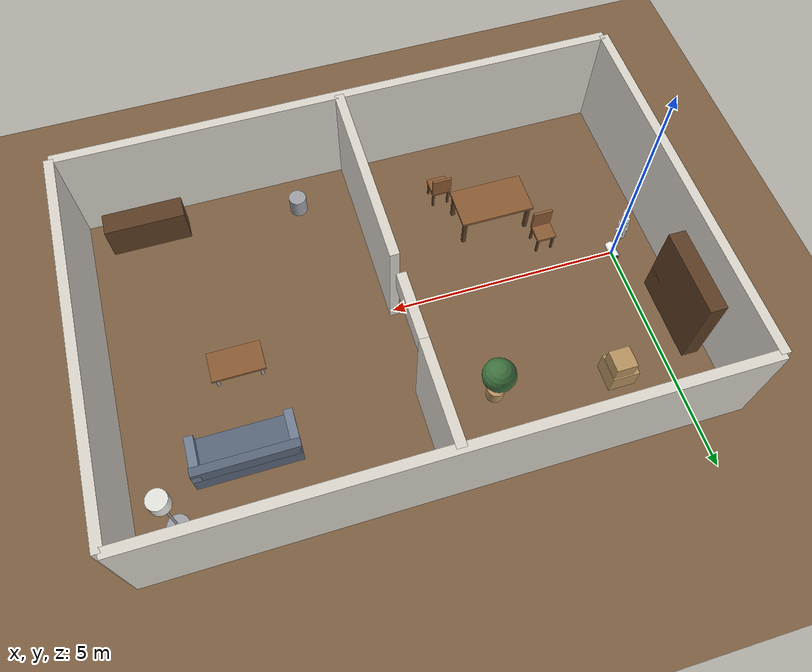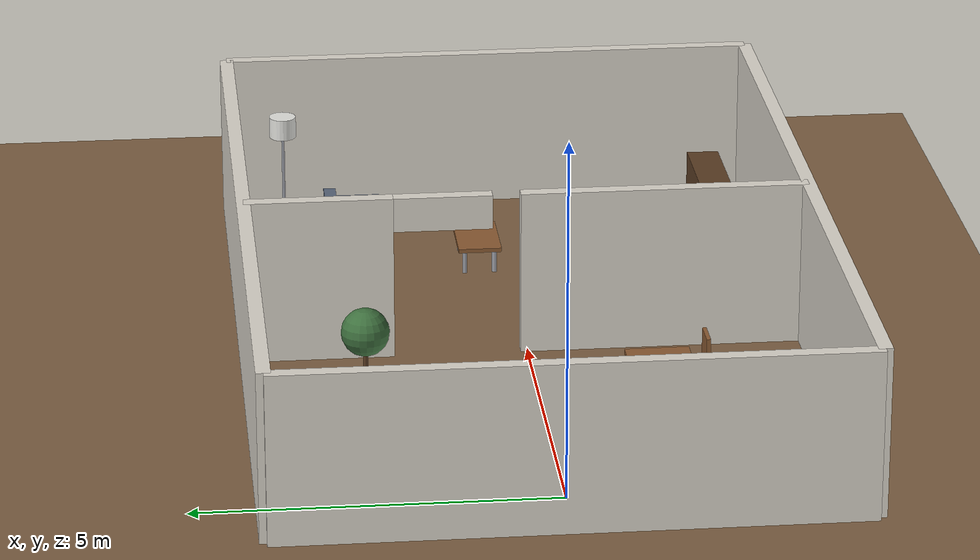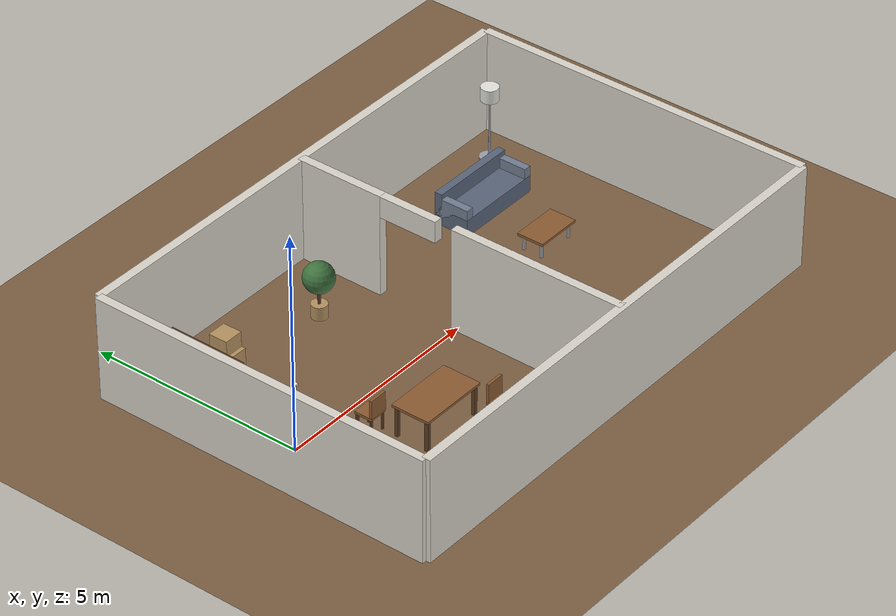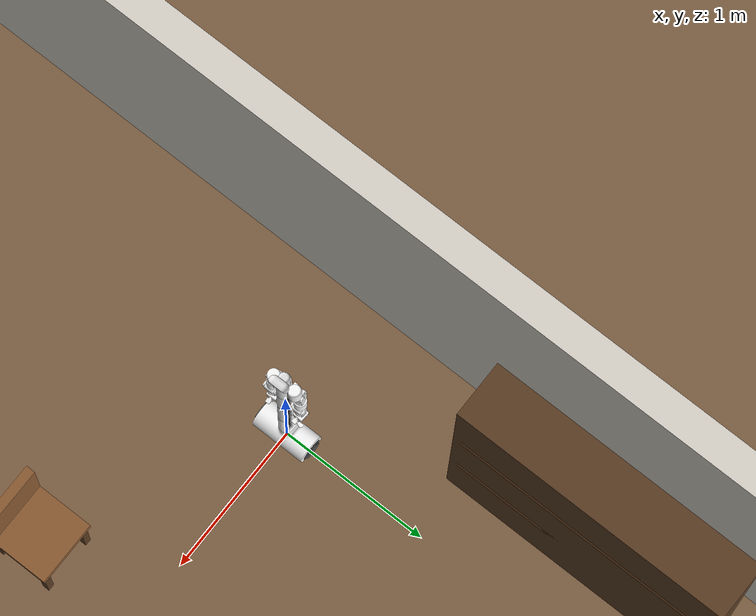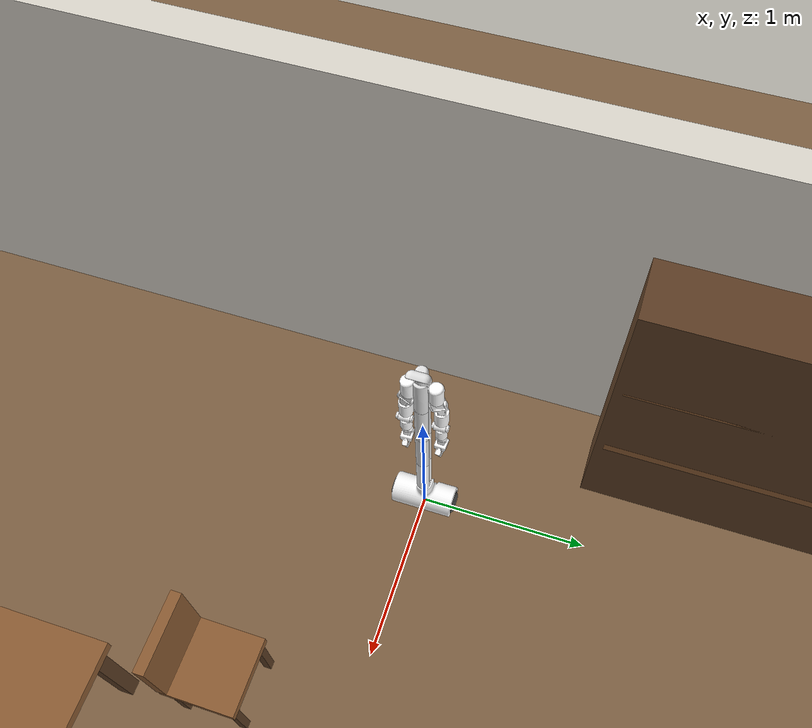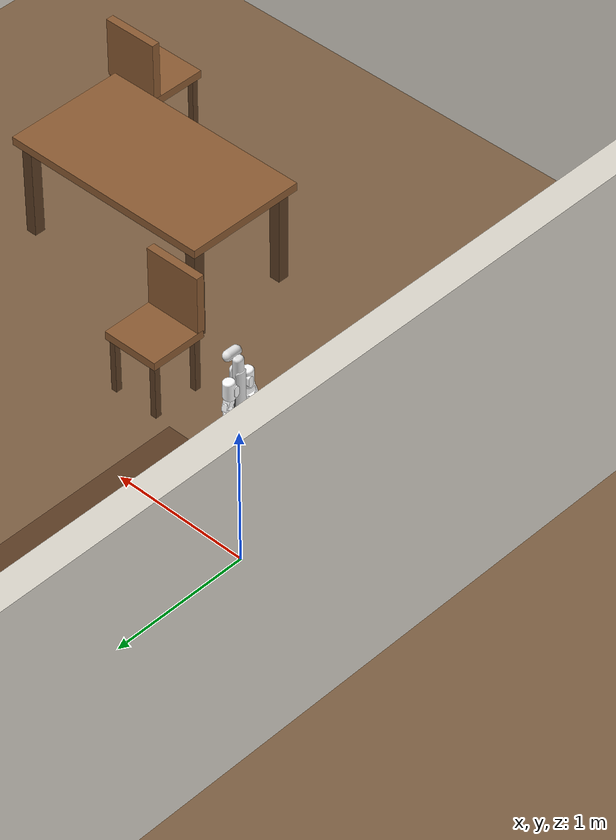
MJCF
<mujoco model="apartment">
  <include file="../main_mujoco/chopped_dynamic.xml"/>
  <compiler meshdir="../main_mujoco/meshes/"/>

  <statistic center="5 0 1.0" extent="7.0"/>

  <visual>
    <headlight diffuse="0.5 0.5 0.5" ambient="0.4 0.4 0.4" specular="0.05 0.05 0.05"/>
    <rgba haze="0.2 0.2 0.22 1"/>
    <global azimuth="150" elevation="-25" offwidth="1280" offheight="960"/>
    <map znear="0.01" zfar="50"/>
    <quality shadowsize="4096"/>
  </visual>

  <asset>
    <texture type="skybox" builtin="gradient" rgb1="0.55 0.58 0.62" rgb2="0.2 0.22 0.25" width="512" height="3072"/>
    <texture type="2d" name="floorwood" builtin="checker" mark="edge"
             rgb1="0.52 0.40 0.28" rgb2="0.46 0.35 0.24" markrgb="0.35 0.26 0.18"
             width="300" height="300"/>
    <material name="floorwood" texture="floorwood" texuniform="true" texrepeat="14 10" reflectance="0.05"/>
    <material name="wall"    rgba="0.86 0.84 0.80 1"/>
    <material name="wood"    rgba="0.55 0.36 0.20 1"/>
    <material name="darkwood" rgba="0.36 0.24 0.14 1"/>
    <material name="fabric"  rgba="0.35 0.40 0.48 1"/>
    <material name="cushion" rgba="0.45 0.50 0.58 1"/>
    <material name="metal"   rgba="0.62 0.63 0.66 1"/>
    <material name="carton"  rgba="0.72 0.58 0.38 1"/>
    <material name="plant"   rgba="0.25 0.45 0.25 1"/>
    <material name="white"   rgba="0.90 0.90 0.88 1"/>
  </asset>

  <worldbody>
    <light pos="2 0 2.6" dir="0 0 -1" directional="false" diffuse="0.45 0.45 0.42"/>
    <light pos="8 0 2.6" dir="0 0 -1" directional="false" diffuse="0.45 0.45 0.42"/>
    <light pos="5 0 6" dir="0 0 -1" directional="true" diffuse="0.35 0.35 0.35"/>
    <geom name="floor" size="0 0 0.05" type="plane" material="floorwood"
          friction="1.6 0.01 0.001" condim="4"/>

    <!-- ============ shell ============ -->
    <body name="wall_w" pos="-1.0 0 1.2"><geom type="box" size="0.1 4.0 1.2" material="wall"/></body>
    <body name="wall_e" pos="11.0 0 1.2"><geom type="box" size="0.1 4.0 1.2" material="wall"/></body>
    <body name="wall_s" pos="5.0 -4.0 1.2"><geom type="box" size="6.0 0.1 1.2" material="wall"/></body>
    <body name="wall_n" pos="5.0  4.0 1.2"><geom type="box" size="6.0 0.1 1.2" material="wall"/></body>

    <!-- divider with a single doorway at y 0.5 .. 1.9 -->
    <body name="divider_s" pos="5.0 -1.95 1.2"><geom type="box" size="0.1 2.05 1.2" material="wall"/></body>
    <body name="divider_n" pos="5.0  2.95 1.2"><geom type="box" size="0.1 1.05 1.2" material="wall"/></body>
    <body name="door_lintel" pos="5.0 1.2 2.15"><geom type="box" size="0.1 0.7 0.25" material="wall"/></body>

    <!-- ============ room A: dining ============ -->
    <body name="table" pos="2.3 -1.6 0">
      <geom name="table_top" type="box" pos="0 0 0.73" size="0.80 0.45 0.03" material="wood"/>
      <geom type="box" pos=" 0.72 -0.37 0.36" size="0.04 0.04 0.36" material="darkwood"/>
      <geom type="box" pos="-0.72 -0.37 0.36" size="0.04 0.04 0.36" material="darkwood"/>
      <geom type="box" pos=" 0.72  0.37 0.36" size="0.04 0.04 0.36" material="darkwood"/>
      <geom type="box" pos="-0.72  0.37 0.36" size="0.04 0.04 0.36" material="darkwood"/>
    </body>

    <body name="chair_a" pos="1.4 -0.7 0">
      <geom type="box" pos="0 0 0.44" size="0.21 0.21 0.03" material="wood"/>
      <geom type="box" pos="0 -0.19 0.68" size="0.21 0.03 0.22" material="wood"/>
      <geom type="box" pos=" 0.17  0.17 0.22" size="0.022 0.022 0.22" material="darkwood"/>
      <geom type="box" pos="-0.17  0.17 0.22" size="0.022 0.022 0.22" material="darkwood"/>
      <geom type="box" pos=" 0.17 -0.17 0.22" size="0.022 0.022 0.22" material="darkwood"/>
      <geom type="box" pos="-0.17 -0.17 0.22" size="0.022 0.022 0.22" material="darkwood"/>
    </body>

    <body name="chair_b" pos="3.2 -2.5 0">
      <geom type="box" pos="0 0 0.44" size="0.21 0.21 0.03" material="wood"/>
      <geom type="box" pos="0 0.19 0.68" size="0.21 0.03 0.22" material="wood"/>
      <geom type="box" pos=" 0.17  0.17 0.22" size="0.022 0.022 0.22" material="darkwood"/>
      <geom type="box" pos="-0.17  0.17 0.22" size="0.022 0.022 0.22" material="darkwood"/>
      <geom type="box" pos=" 0.17 -0.17 0.22" size="0.022 0.022 0.22" material="darkwood"/>
      <geom type="box" pos="-0.17 -0.17 0.22" size="0.022 0.022 0.22" material="darkwood"/>
    </body>

    <!-- bookshelf against the west wall -->
    <body name="bookshelf" pos="-0.55 1.8 0">
      <geom type="box" pos="0 0 0.95" size="0.18 0.9 0.95" material="darkwood"/>
      <geom type="box" pos="0.02 0 1.25" size="0.16 0.85 0.03" material="wood"/>
      <geom type="box" pos="0.02 0 0.62" size="0.16 0.85 0.03" material="wood"/>
    </body>

    <!-- stacked cartons -->
    <body name="cartons" pos="1.1 2.7 0">
      <geom type="box" pos="0 0 0.25" size="0.28 0.28 0.25" material="carton"/>
      <geom type="box" pos="0.05 0.03 0.68" size="0.22 0.22 0.18" material="carton"/>
    </body>

    <!-- a potted plant: thin trunk, wide head, a classic depth-camera nuisance -->
    <body name="plant" pos="3.6 2.4 0">
      <geom type="cylinder" pos="0 0 0.16" size="0.18 0.16" material="carton"/>
      <geom type="cylinder" pos="0 0 0.55" size="0.035 0.28" material="darkwood"/>
      <geom type="sphere"   pos="0 0 0.95" size="0.34" material="plant"/>
    </body>

    <!-- ============ room B: living ============ -->
    <body name="sofa" pos="8.6 2.2 0">
      <geom type="box" pos="0 0 0.20" size="1.05 0.42 0.20" material="fabric"/>
      <geom type="box" pos="0 0.33 0.48" size="1.05 0.09 0.28" material="fabric"/>
      <geom type="box" pos=" 0.96 0 0.42" size="0.09 0.42 0.22" material="cushion"/>
      <geom type="box" pos="-0.96 0 0.42" size="0.09 0.42 0.22" material="cushion"/>
    </body>

    <body name="coffee_table" pos="8.4 0.4 0">
      <geom type="box" pos="0 0 0.38" size="0.55 0.32 0.03" material="wood"/>
      <geom type="cylinder" pos=" 0.45 0.22 0.19" size="0.035 0.19" material="metal"/>
      <geom type="cylinder" pos="-0.45 0.22 0.19" size="0.035 0.19" material="metal"/>
      <geom type="cylinder" pos=" 0.45 -0.22 0.19" size="0.035 0.19" material="metal"/>
      <geom type="cylinder" pos="-0.45 -0.22 0.19" size="0.035 0.19" material="metal"/>
    </body>

    <!-- floor lamp: very thin pole, the hardest thing here to see -->
    <body name="lamp" pos="10.1 3.2 0">
      <geom type="cylinder" pos="0 0 0.02" size="0.22 0.02" material="metal"/>
      <geom type="cylinder" pos="0 0 0.75" size="0.022 0.75" material="metal"/>
      <geom type="cylinder" pos="0 0 1.62" size="0.20 0.16" material="white"/>
    </body>

    <body name="bin" pos="6.3 -3.1 0">
      <geom type="cylinder" pos="0 0 0.22" size="0.19 0.22" material="metal"/>
    </body>

    <body name="sideboard" pos="9.6 -3.3 0">
      <geom type="box" pos="0 0 0.42" size="0.85 0.24 0.42" material="darkwood"/>
      <geom type="box" pos="0 -0.26 0.58" size="0.30 0.02 0.16" material="wood"/>
    </body>
  </worldbody>
</mujoco>

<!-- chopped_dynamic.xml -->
<mujoco model="bracketbot_chopped_v2">
  <compiler angle="radian" meshdir="meshes/" autolimits="true" />
  <option timestep="0.002" integrator="implicitfast" cone="elliptic" impratio="10" />
  <asset>
    <mesh name="Base_Extrusion__Base_Extrusion" content_type="model/stl" file="Base_Extrusion__Base_Extrusion.stl" />
    <mesh name="Base_Extrusion__Base_Extrusion__Base_Extrusion__Base_Extrusion" content_type="model/stl" file="Base_Extrusion__Base_Extrusion__Base_Extrusion__Base_Extrusion.stl" />
    <mesh name="Base_Plate__Base_Plate" content_type="model/stl" file="Base_Plate__Base_Plate.stl" />
    <mesh name="Base_Print__Base_Print" content_type="model/stl" file="Base_Print__Base_Print.stl" />
    <mesh name="Battery_Terminal__Battery_Terminal" content_type="model/stl" file="Battery_Terminal__Battery_Terminal.stl" />
    <mesh name="Bottom_Cover_Back__Bottom_Cover_Back__Bottom_Cover_Back__Bottom_Cover_Back" content_type="model/stl" file="Bottom_Cover_Back__Bottom_Cover_Back__Bottom_Cover_Back__Bottom_Cover_Back.stl" />
    <mesh name="Bottom_Cover_Front__Bottom_Cover_Front__Bottom_Cover_Front__Bottom_Cover_Front" content_type="model/stl" file="Bottom_Cover_Front__Bottom_Cover_Front__Bottom_Cover_Front__Bottom_Cover_Front.stl" />
    <mesh name="Camera_Cover__Camera_Cover__Camera_Cover__Camera_Cover" content_type="model/stl" file="Camera_Cover__Camera_Cover__Camera_Cover__Camera_Cover.stl" />
    <mesh name="Cover_MiddleBot_Back__Cover_MiddleBot_Back__Cover_MiddleBot_Back__Cover_MiddleBot_Back" content_type="model/stl" file="Cover_MiddleBot_Back__Cover_MiddleBot_Back__Cover_MiddleBot_Back__Cover_MiddleBot_Back.stl" />
    <mesh name="Cover_MiddleBot_Front__Cover_MiddleBot_Front__Cover_MiddleBot_Front__Cover_MiddleBot_Front" content_type="model/stl" file="Cover_MiddleBot_Front__Cover_MiddleBot_Front__Cover_MiddleBot_Front__Cover_MiddleBot_Front.stl" />
    <mesh name="Cover_MiddleTop_Back__Cover_MiddleTop_Back__Cover_MiddleTop_Back__Cover_MiddleTop_Back" content_type="model/stl" file="Cover_MiddleTop_Back__Cover_MiddleTop_Back__Cover_MiddleTop_Back__Cover_MiddleTop_Back.stl" />
    <mesh name="Cover_MiddleTop_Front__Cover_MiddleTop_Front__Cover_MiddleTop_Front__Cover_MiddleTop_Front" content_type="model/stl" file="Cover_MiddleTop_Front__Cover_MiddleTop_Front__Cover_MiddleTop_Front__Cover_MiddleTop_Front.stl" />
    <mesh name="Cover_Top_Front__Cover_Top_Front__Cover_Top_Front__Cover_Top_Front" content_type="model/stl" file="Cover_Top_Front__Cover_Top_Front__Cover_Top_Front__Cover_Top_Front.stl" />
    <mesh name="Head__Head__Head__Head" content_type="model/stl" file="Head__Head__Head__Head.stl" />
    <mesh name="Head_Cover__Head_Cover__Head_Cover__Head_Cover" content_type="model/stl" file="Head_Cover__Head_Cover__Head_Cover__Head_Cover.stl" />
    <mesh name="Left_wheel_cap__Left_wheel_cap" content_type="model/stl" file="Left_wheel_cap__Left_wheel_cap.stl" />
    <mesh name="Left_Wheel_Tire__Left_Wheel_Tire" content_type="model/stl" file="Left_Wheel_Tire__Left_Wheel_Tire.stl" />
    <mesh name="Main_Extrusion__Main_Extrusion__Main_Extrusion__Main_Extrusion" content_type="model/stl" file="Main_Extrusion__Main_Extrusion__Main_Extrusion__Main_Extrusion.stl" />
    <mesh name="Mirror30__Mirror30" content_type="model/stl" file="Mirror30__Mirror30.stl" />
    <mesh name="Right_Wheel_Cap__Right_Wheel_Cap" content_type="model/stl" file="Right_Wheel_Cap__Right_Wheel_Cap.stl" />
    <mesh name="Right_Wheel_Tire__Right_Wheel_Tire" content_type="model/stl" file="Right_Wheel_Tire__Right_Wheel_Tire.stl" />
    <mesh name="Top_Cover_back__Top_Cover_back__Top_Cover_back__Top_Cover_back" content_type="model/stl" file="Top_Cover_back__Top_Cover_back__Top_Cover_back__Top_Cover_back.stl" />
    <mesh name="Bicep__Bicep" content_type="model/stl" file="Bicep__Bicep.stl" />
    <mesh name="Bicep_Cover__Bicep_Cover" content_type="model/stl" file="Bicep_Cover__Bicep_Cover.stl" />
    <mesh name="Forearm__Forearm" content_type="model/stl" file="Forearm__Forearm.stl" />
    <mesh name="Forearm_Cover__Forearm_Cover" content_type="model/stl" file="Forearm_Cover__Forearm_Cover.stl" />
    <mesh name="Forearm_Rotation__Forearm_Rotation" content_type="model/stl" file="Forearm_Rotation__Forearm_Rotation.stl" />
    <mesh name="Hand__Hand" content_type="model/stl" file="Hand__Hand.stl" />
    <mesh name="Hand_Motor_Mount__Hand_Motor_Mount" content_type="model/stl" file="Hand_Motor_Mount__Hand_Motor_Mount.stl" />
    <mesh name="Left_Finger__Left_Finger" content_type="model/stl" file="Left_Finger__Left_Finger.stl" />
    <mesh name="Right_Finger__Right_Finger" content_type="model/stl" file="Right_Finger__Right_Finger.stl" />
    <mesh name="Shoulder__Shoulder" content_type="model/stl" file="Shoulder__Shoulder.stl" />
    <mesh name="Shoulder_Cover__Shoulder_Cover" content_type="model/stl" file="Shoulder_Cover__Shoulder_Cover.stl" />
    <mesh name="Shoulder_Knuckle__Shoulder_Knuckle" content_type="model/stl" file="Shoulder_Knuckle__Shoulder_Knuckle.stl" />
    <mesh name="Wrist_Cam__Wrist_Cam" content_type="model/stl" file="Wrist_Cam__Wrist_Cam.stl" />
    <mesh name="Wrist_Knuckle__Wrist_Knuckle" content_type="model/stl" file="Wrist_Knuckle__Wrist_Knuckle.stl" />
    <mesh name="Shoulder__Shoulder_Mirrored" content_type="model/stl" file="Shoulder__Shoulder_Mirrored.stl" />
    <mesh name="Shoulder_Knuckle__Shoulder_Knuckle_Mirrored" content_type="model/stl" file="Shoulder_Knuckle__Shoulder_Knuckle_Mirrored.stl" />
    <mesh name="Bicep__Bicep_Mirrored" content_type="model/stl" file="Bicep__Bicep_Mirrored.stl" />
    <mesh name="Forearm__Forearm_Mirrored" content_type="model/stl" file="Forearm__Forearm_Mirrored.stl" />
    <mesh name="Forearm_Rotation__Forearm_Rotation_Mirrored" content_type="model/stl" file="Forearm_Rotation__Forearm_Rotation_Mirrored.stl" />
    <mesh name="Wrist_Knuckle__Wrist_Knuckle_Mirrored" content_type="model/stl" file="Wrist_Knuckle__Wrist_Knuckle_Mirrored.stl" />
    <mesh name="Hand__Hand_Mirrored" content_type="model/stl" file="Hand__Hand_Mirrored.stl" />
    <mesh name="Wrist_Cam__Wrist_Cam_Mirrored" content_type="model/stl" file="Wrist_Cam__Wrist_Cam_Mirrored.stl" />
    <mesh name="Hand_Motor_Mount__Hand_Motor_Mount_Mirrored" content_type="model/stl" file="Hand_Motor_Mount__Hand_Motor_Mount_Mirrored.stl" />
    <mesh name="Right_Finger__Right_Finger_Mirrored" content_type="model/stl" file="Right_Finger__Right_Finger_Mirrored.stl" />
    <mesh name="Left_Finger__Left_Finger_Mirrored" content_type="model/stl" file="Left_Finger__Left_Finger_Mirrored.stl" />
    <mesh name="Forearm_Cover__Forearm_Cover_Mirrored" content_type="model/stl" file="Forearm_Cover__Forearm_Cover_Mirrored.stl" />
    <mesh name="Bicep_Cover__Bicep_Cover_Mirrored" content_type="model/stl" file="Bicep_Cover__Bicep_Cover_Mirrored.stl" />
    <mesh name="Shoulder_Cover__Shoulder_Cover_Mirrored" content_type="model/stl" file="Shoulder_Cover__Shoulder_Cover_Mirrored.stl" />
  </asset>
  <default>
    <default class="visual">
      <geom contype="0" conaffinity="0" group="2" type="mesh" density="0" />
    </default>
    <default class="collision">
      <geom contype="1" conaffinity="1" group="3" density="0" rgba="0.9 0.4 0.2 0.35" friction="1 0.005 0.0001" />
    </default>
    <default class="wheel">
      <geom contype="1" conaffinity="1" group="3" density="0" rgba="0.1 0.1 0.1 0.6" friction="1.6 0.01 0.001" condim="4" solref="0.005 1" priority="2" />
    </default>
    <default class="pad">
      <geom contype="1" conaffinity="1" group="3" density="0" rgba="0.2 0.8 0.4 0.6" friction="2.5 0.05 0.005" condim="4" priority="3" solref="0.004 1" solimp="0.95 0.99 0.001" />
    </default>
    <default class="arm">
      <joint damping="4.0" armature="0.05" frictionloss="0.1" />
      <position kp="800" kv="60" forcerange="-150 150" />
    </default>
    <default class="mast">
      <joint damping="60" armature="0.5" frictionloss="1.0" />
      <position kp="6000" kv="400" forcerange="-400 400" />
    </default>
    <default class="gripper">
      <joint damping="0.4" armature="0.01" frictionloss="0.02" />
      <position kp="35" kv="1.5" forcerange="-12 12" />
    </default>
  </default>
  <worldbody>
    <body name="chassis" pos="0 0 0">
      <freejoint name="root" />
      <inertial pos="0.018227 3.07762e-06 0.144928" quat="6.24856e-05 0.717422 -6.23742e-05 -0.696638" mass="3.38" diaginertia="0.0545356 0.0861119 0.11238" />
      <site name="imu" pos="0.018227 3.07762e-06 0.144928" size="0.01" rgba="0 1 0 0.5" />
      <geom class="visual" mesh="Base_Plate__Base_Plate" pos="0.0113398 6.4516e-07 0.0776294" quat="0.707106 -0.707108 -1.79246e-05 -1.77981e-05" rgba="1 1 1 1" />
      <geom class="visual" mesh="Bottom_Cover_Front__Bottom_Cover_Front__Bottom_Cover_Front__Bottom_Cover_Front" pos="0.0153412 0.00013591 0.0503629" quat="0.707106 -0.707108 -1.79246e-05 -1.77981e-05" rgba="1 1 1 1" />
      <geom class="visual" mesh="Cover_MiddleBot_Front__Cover_MiddleBot_Front__Cover_MiddleBot_Front__Cover_MiddleBot_Front" pos="0.0153412 0.00013591 0.0503629" quat="0.707106 -0.707108 -1.79246e-05 -1.77981e-05" rgba="0.8941 0.8941 0.8941 1" />
      <geom class="visual" mesh="Cover_MiddleTop_Front__Cover_MiddleTop_Front__Cover_MiddleTop_Front__Cover_MiddleTop_Front" pos="0.0153412 0.00013591 0.0503629" quat="0.707106 -0.707108 -1.79246e-05 -1.77981e-05" rgba="0.8941 0.8941 0.8941 1" />
      <geom class="visual" mesh="Cover_Top_Front__Cover_Top_Front__Cover_Top_Front__Cover_Top_Front" pos="0.0153412 0.00013591 0.0503629" quat="0.707106 -0.707108 -1.79246e-05 -1.77981e-05" rgba="0.8941 0.8941 0.8941 1" />
      <geom class="visual" mesh="Top_Cover_back__Top_Cover_back__Top_Cover_back__Top_Cover_back" pos="0.0153412 0.00013591 0.0503629" quat="0.707106 -0.707108 -1.79246e-05 -1.77981e-05" rgba="0.8941 0.8941 0.8941 1" />
      <geom class="visual" mesh="Cover_MiddleTop_Back__Cover_MiddleTop_Back__Cover_MiddleTop_Back__Cover_MiddleTop_Back" pos="0.0153412 0.00013591 0.0503629" quat="0.707106 -0.707108 -1.79246e-05 -1.77981e-05" rgba="0.8941 0.8941 0.8941 1" />
      <geom class="visual" mesh="Cover_MiddleBot_Back__Cover_MiddleBot_Back__Cover_MiddleBot_Back__Cover_MiddleBot_Back" pos="0.0153412 0.00013591 0.0503629" quat="0.707106 -0.707108 -1.79246e-05 -1.77981e-05" rgba="0.8941 0.8941 0.8941 1" />
      <geom class="visual" mesh="Bottom_Cover_Back__Bottom_Cover_Back__Bottom_Cover_Back__Bottom_Cover_Back" pos="0.0153412 0.00013591 0.0503629" quat="0.707106 -0.707108 -1.79246e-05 -1.77981e-05" rgba="1 1 1 1" />
      <geom class="visual" mesh="Main_Extrusion__Main_Extrusion__Main_Extrusion__Main_Extrusion" pos="0.0113398 6.4516e-07 0.0776294" quat="0.707106 -0.707108 -1.79246e-05 -1.77981e-05" rgba="0.302 0.302 0.302 1" />
      <geom class="visual" mesh="Base_Extrusion__Base_Extrusion__Base_Extrusion__Base_Extrusion" pos="0.0113398 6.4516e-07 0.0776294" quat="0.707106 -0.707108 -1.79246e-05 -1.77981e-05" rgba="0.8 0.8 0.8 1" />
      <geom class="visual" mesh="Base_Extrusion__Base_Extrusion" pos="0.0113397 6.47368e-07 0.0776294" quat="0.707106 -0.707108 -1.79246e-05 -1.77981e-05" rgba="0.7922 0.8196 0.9333 1" />
      <geom class="visual" mesh="Base_Print__Base_Print" pos="0.0113398 6.4516e-07 0.0776294" quat="0.707106 -0.707108 -1.79246e-05 -1.77981e-05" rgba="1 1 1 1" />
      <geom class="visual" mesh="Battery_Terminal__Battery_Terminal" pos="0.0113398 6.4516e-07 0.0776294" quat="0.707106 -0.707108 -1.79246e-05 -1.77981e-05" rgba="1 0.7569 0.0549 1" />
      <geom class="visual" mesh="Mirror30__Mirror30" pos="0.0113398 6.4516e-07 0.0776294" quat="0.707106 -0.707108 -1.79246e-05 -1.77981e-05" rgba="1 1 1 1" />
      <geom class="visual" mesh="Head__Head__Head__Head" pos="0.0113398 6.4516e-07 0.0776294" quat="0.707106 -0.707108 -1.79246e-05 -1.77981e-05" rgba="0.8941 0.8941 0.8941 1" />
      <geom class="visual" mesh="Camera_Cover__Camera_Cover__Camera_Cover__Camera_Cover" pos="0.0113428 6.4516e-07 0.0776293" quat="0.707106 -0.707108 -1.8625e-05 -1.84985e-05" rgba="0.251 0.251 0.251 1" />
      <geom class="visual" mesh="Head_Cover__Head_Cover__Head_Cover__Head_Cover" pos="0.0113398 6.4516e-07 0.0776294" quat="0.707106 -0.707108 -1.79246e-05 -1.77981e-05" rgba="0.8941 0.8941 0.8941 1" />
      <geom class="collision" name="col_base_hull" type="box" pos="3.94536e-05 7.39092e-07 0.157186" size="0.0935995 0.18575 0.129078" />
      <geom class="collision" name="col_mast" type="box" pos="8.99487e-07 2.8209e-06 0.847629" size="0.0200308 0.0200017 0.610001" />
      <geom class="collision" name="col_head" type="box" pos="0.0202672 1.33499e-05 1.5235" size="0.054031 0.0654754 0.0878748" />
      <camera name="head_rgb" mode="fixed" fovy="42" pos="0.0792982 0 1.5435" xyaxes="0 -1 0 0 0 1" />
      <camera name="head_depth" mode="fixed" fovy="58" pos="0.0792982 0 1.5435" xyaxes="0 -1 0 0.374607 0 0.927184" />
      <camera name="head_stereo_left" mode="fixed" fovy="55" pos="0.0792982 0.03 1.5435" xyaxes="0 -1 0 0 0 1" />
      <camera name="head_stereo_right" mode="fixed" fovy="55" pos="0.0792982 -0.03 1.5435" xyaxes="0 -1 0 0 0 1" />
      <body name="right_wheel" pos="0 -0.1611 0.0846">
        <joint name="right_wheel_joint" type="hinge" axis="0 1 0" damping="0.02" armature="0.005" frictionloss="0.01" />
        <inertial pos="0 0 0" mass="2.2" diaginertia="0.009 0.018 0.009" />
        <geom class="visual" mesh="Right_Wheel_Cap__Right_Wheel_Cap" pos="0.0113398 0.161101 -0.0069706" quat="0.707106 -0.707108 -1.79246e-05 -1.77981e-05" rgba="0.302 0.302 0.302 1" />
        <geom class="visual" mesh="Right_Wheel_Tire__Right_Wheel_Tire" pos="0.0113398 0.161101 -0.0069706" quat="0.707106 -0.707108 -1.79246e-05 -1.77981e-05" rgba="0.302 0.302 0.302 1" />
        <geom class="wheel" name="right_tire" type="cylinder" size="0.0846 0.0226" zaxis="0 1 0" />
        <site name="right_wheel_site" size="0.005" rgba="1 0 0 0.5" />
      </body>
      <body name="left_wheel" pos="0 0.1611 0.0846">
        <joint name="left_wheel_joint" type="hinge" axis="0 1 0" damping="0.02" armature="0.005" frictionloss="0.01" />
        <inertial pos="0 0 0" mass="2.2" diaginertia="0.009 0.018 0.009" />
        <geom class="visual" mesh="Left_wheel_cap__Left_wheel_cap" pos="0.0113398 -0.161099 -0.0069706" quat="0.707106 -0.707108 -1.79246e-05 -1.77981e-05" rgba="0.302 0.302 0.302 1" />
        <geom class="visual" mesh="Left_Wheel_Tire__Left_Wheel_Tire" pos="0.0113398 -0.161099 -0.0069706" quat="0.707106 -0.707108 -1.79246e-05 -1.77981e-05" rgba="0.302 0.302 0.302 1" />
        <geom class="wheel" name="left_tire" type="cylinder" size="0.0846 0.0226" zaxis="0 1 0" />
        <site name="left_wheel_site" size="0.005" rgba="1 0 0 0.5" />
      </body>
      <body name="arm_base" pos="-1.35902e-08 -2.23143e-08 0.0303917" quat="1 0 0 0">
        <inertial pos="0 0 0" mass="4.17424e-07" diaginertia="0 0 0" />
        <body name="shoulder__shoulder" pos="7.84415e-09 -0.0275 1.40573" quat="1 4.63465e-12 1.8366e-06 1.42623e-07">
          <inertial pos="-0.00207733 -0.0439747 -0.0719634" quat="0.993106 -0.0357613 0.00588813 -0.111477" mass="0.293558" diaginertia="0.000833124 0.00080203 0.000207478" />
          <joint name="rj0" type="slide" range="-1.03044 0" class="mast" />
          <geom pos="0.0112151 0.0286011 -1.35824" quat="0 1 0 0" type="mesh" contype="0" conaffinity="0" group="1" rgba="1 1 1 1" density="0" mesh="Shoulder__Shoulder" />
          <body name="shoulder_cover__shoulder_cover" pos="0.0112151 0.0286011 -1.35824" quat="0 1 0 0">
            <inertial pos="-0.0111642 0.0752512 -1.30987" mass="0.239577" diaginertia="0.000379014 0.000379014 0.000180015" />
            <geom type="mesh" contype="0" conaffinity="0" group="1" rgba="1 1 1 1" density="0" mesh="Shoulder_Cover__Shoulder_Cover" />
          </body>
          <body name="shoulder_knuckle__shoulder_knuckle" pos="-0.00793877 -0.0857475 -0.144638" quat="0.76632 0.608761 -1.00888e-06 -0.205336">
            <inertial pos="-0.00359973 -0.0351324 -0.032679" quat="0.0694297 0.857532 0.164673 0.48239" mass="0.0558705" diaginertia="7.70147e-05 5.78959e-05 5.13611e-05" />
            <joint name="rj1" range="-2.0944 2.0944" class="arm" />
            <geom pos="0.285662 -1.10745 -0.425773" quat="0.608761 0.76632 0.205335 0" type="mesh" contype="0" conaffinity="0" group="1" rgba="1 1 1 1" density="0" mesh="Shoulder_Knuckle__Shoulder_Knuckle" />
            <body name="bicep__bicep" pos="-0.0345871 -0.0799863 -0.0310962" quat="0.425282 0.427297 0.563398 0.56492">
              <inertial pos="-0.0787373 -0.0223314 0.0425602" quat="0.574949 0.0709813 0.0593942 0.812938" mass="0.270597" diaginertia="0.000860707 0.000850777 0.000156718" />
              <joint name="rj2" range="-2.0944 2.0944" class="arm" />
              <geom pos="-1.08044 -0.3902 0.0283732" quat="0.70241 0.181779 -0.688169 1.62104e-12" type="mesh" contype="0" conaffinity="0" group="1" rgba="1 1 1 1" density="0" mesh="Bicep__Bicep" />
              <body name="bicep_cover__bicep_cover" pos="-1.08044 -0.3902 0.0283732" quat="0.70241 0.181779 -0.688169 1.62104e-12">
                <inertial pos="-0.0254793 0.097391 -1.06421" quat="0.988942 0.00734107 -0.0909335 0.11692" mass="0.0410095" diaginertia="6.9102e-05 6.60774e-05 5.30729e-05" />
                <geom type="mesh" contype="0" conaffinity="0" group="1" rgba="1 1 1 1" density="0" mesh="Bicep_Cover__Bicep_Cover" />
              </body>
              <body name="forearm__forearm" pos="-0.140146 -0.0763873 0.0558851" quat="0.62745 -0.367259 -0.485501 -0.485505">
                <inertial pos="-0.0213131 -0.0661025 0.0333011" quat="0.998205 -0.000305943 -0.0598432 0.00250762" mass="0.125696" diaginertia="0.000211413 0.000187563 7.6288e-05" />
                <joint name="rj3" range="-2.0944 2.0944" class="arm" />
                <geom pos="-0.000283681 -0.986812 -0.068819" quat="0.705623 0.708583 -0.00249187 0" type="mesh" contype="0" conaffinity="0" group="1" rgba="1 1 1 1" density="0" mesh="Forearm__Forearm" />
                <body name="forearm_cover__forearm_cover" pos="-0.000283681 -0.986812 -0.068819" quat="0.705623 0.708583 -0.00249187 0">
                  <inertial pos="-0.0228592 0.097541 -0.910018" quat="0.988569 -0.00684891 0.146667 -0.0342637" mass="0.0315972" diaginertia="4.591e-05 4.18317e-05 2.90731e-05" />
                  <geom type="mesh" contype="0" conaffinity="0" group="1" rgba="1 1 1 1" density="0" mesh="Forearm_Cover__Forearm_Cover" />
                </body>
                <body name="forearm_rotation__forearm_rotation" pos="-0.026394 -0.12487 0.0320705" quat="0.294631 -0.264653 0.65568 0.642834">
                  <inertial pos="3.56774e-05 2.45812e-05 -0.021805" quat="0.63268 0.00171299 0.00374296 0.774403" mass="0.0277186" diaginertia="9.51906e-06 8.21586e-06 6.86216e-06" />
                  <joint name="rj4" range="-2.0944 2.0944" class="arm" />
                  <geom pos="0.0641084 -0.0805833 -0.860955" quat="0.00516927 -0.393949 0.919118 -2.09626e-09" type="mesh" contype="0" conaffinity="0" group="1" rgba="1 1 1 1" density="0" mesh="Forearm_Rotation__Forearm_Rotation" />
                  <body name="wrist_knuckle__wrist_knuckle" pos="-0.0131274 -0.014875 -0.0327431" quat="0.668883 0.356813 -0.610479 0.229338">
                    <inertial pos="-0.0218344 -0.00560663 -0.02105" quat="-0.0884246 0.708648 0.053519 0.69795" mass="0.017672" diaginertia="9.31882e-06 9.01369e-06 8.94978e-06" />
                    <joint name="rj5" range="-2.0944 2.0944" class="arm" />
                    <geom pos="-0.791586 -0.264038 -0.0274632" quat="0.703518 0.141721 -0.696403 2.94367e-05" type="mesh" contype="0" conaffinity="0" group="1" rgba="1 1 1 1" density="0" mesh="Wrist_Knuckle__Wrist_Knuckle" />
                    <body name="hand__hand" pos="-0.0480111 0.0111602 -0.0199286" quat="0.504103 -0.402362 -0.581468 -0.495863">
                      <inertial pos="0.0104256 -0.0225964 -0.0208472" quat="0.557084 0.277612 0.286901 0.728201" mass="0.043433" diaginertia="4.29909e-05 3.78548e-05 2.46968e-05" />
                      <joint name="rj6" range="-2.0944 2.0944" class="arm" />
                      <geom pos="0.158112 -0.771279 -0.0790065" quat="0.724748 0.675251 0.137026 0" type="mesh" contype="0" conaffinity="0" group="1" rgba="1 1 1 1" density="0" mesh="Hand__Hand" />
                      <body name="left_finger__left_finger" pos="0.0413008 -0.0450476 -0.0372147" quat="0.504688 0.364974 0.605635 0.495268">
                        <inertial pos="-0.0340814 -0.00413194 -0.0245907" quat="0.629243 0.0482231 0.0863023 0.770896" mass="0.0192533" diaginertia="2.4503e-05 1.85765e-05 7.65472e-06" />
                        <joint name="right_left_gripper" range="0 1" class="gripper" />
                        <geom pos="-0.700467 -0.222749 -0.0540855" quat="0.695209 0.144141 -0.704207 1.7071e-08" type="mesh" contype="0" conaffinity="0" group="1" rgba="1 1 1 1" density="0" mesh="Left_Finger__Left_Finger" />
                        <geom class="pad" name="pad_left_finger__left_finger" type="box" pos="-0.101068 -0.0166277 -0.00985441" quat="-0.0741789 0.691555 0.10755 0.71041" size="0.02 0.005 0.018" />
                      </body>
                      <body name="right_finger__right_finger" pos="0.0413009 -0.0450476 -0.00313575" quat="0.520146 0.586412 -0.395122 -0.479008">
                        <inertial pos="0.0348601 -0.000281218 0.0243554" quat="0.624049 0.119738 0.01936 0.771914" mass="0.0190719" diaginertia="2.41795e-05 1.83122e-05 7.56347e-06" />
                        <joint name="right_right_gripper" range="0 1" class="gripper" />
                        <geom pos="0.736527 0.0353731 0.0544735" quat="0.718808 -0.139409 0.681088 1.76495e-08" type="mesh" contype="0" conaffinity="0" group="1" rgba="1 1 1 1" density="0" mesh="Right_Finger__Right_Finger" />
                        <geom class="pad" name="pad_right_finger__right_finger" type="box" pos="0.10257 0.00371085 0.0096654" quat="0.0333104 0.710855 0.069785 -0.699075" size="0.02 0.005 0.018" />
                      </body>
                      <body name="wrist_cam__wrist_cam" pos="0.158112 -0.771279 -0.0790065" quat="0.724748 0.675251 0.137026 0">
                        <inertial pos="0.0335636 0.104461 -0.727313" quat="0.923047 -0.0130961 0.3712 0.100115" mass="0.00122084" diaginertia="6.44369e-08 5.83221e-08 5.19117e-08" />
                        <geom type="mesh" contype="0" conaffinity="0" group="1" rgba="0.792157 0.819608 0.933333 1" density="0" mesh="Wrist_Cam__Wrist_Cam" />
                        <body name="hand_motor_mount__hand_motor_mount" pos="0 0 0">
                          <inertial pos="-0.0211672 0.094284 -0.72929" quat="0.447815 0.538612 -0.441638 0.560638" mass="0.0137253" diaginertia="8.60807e-06 7.32992e-06 4.25017e-06" />
                          <geom type="mesh" contype="0" conaffinity="0" group="1" rgba="1 1 1 1" density="0" mesh="Hand_Motor_Mount__Hand_Motor_Mount" />
                        </body>
                        <camera name="wrist_cam_right" mode="fixed" fovy="60" pos="0.035412 0.105034 -0.710844" xyaxes="-0.94002982 0.052407572 -0.33704212 0 0.98812591 0.15364632" />
                      </body>
                      <body name="right_eef" pos="0.0337039 -0.14163 -0.0201752" quat="0.702288 0.702288 0.0824116 0.0824116">
                        <inertial pos="0 0 0" mass="4.17424e-07" diaginertia="0 0 0" />
                      </body>
                      <geom class="collision" name="col_hand__hand" type="box" pos="0.0295917 -0.0288798 -0.0201749" size="0.052067 0.0456034 0.033038" />
                      <site name="right_grasp" pos="0.0554168 -0.146524 -0.0214994" quat="0.706816 -0.698929 -0.0925778 0.05778" size="0.008" rgba="0 1 0.3 0.6" group="4" />
                    </body>
                  </body>
                </body>
                <geom class="collision" name="col_forearm__forearm" type="box" pos="-0.0205737 -0.0537982 0.0328214" size="0.0382869 0.0715442 0.044621" />
              </body>
            </body>
          </body>
        </body>
        <body name="l_shoulder__shoulder" pos="-7.84415e-09 0.0275 1.40573" quat="1 2.65358e-06 1.8366e-06 1.42623e-07">
          <inertial pos="-0.00207733 0.0439747 -0.0719634" quat="0.993106 0.0357613 0.00588813 0.111477" mass="0.293558" diaginertia="0.000833124 0.00080203 0.000207478" />
          <joint name="lj0" type="slide" range="-1.03044 0" class="mast" />
          <geom pos="0.0112151 -0.0286011 -1.35824" quat="0 1 0 0" type="mesh" contype="0" conaffinity="0" group="1" rgba="1 1 1 1" density="0" mesh="Shoulder__Shoulder_Mirrored" />
          <body name="l_shoulder_cover__shoulder_cover" pos="0.0112151 -0.0286011 -1.35824" quat="0 -1 0 0">
            <inertial pos="-0.0111642 -0.0752512 -1.30987" mass="0.239577" diaginertia="0.000379014 0.000379014 0.000180015" />
            <geom type="mesh" contype="0" conaffinity="0" group="1" rgba="1 1 1 1" density="0" mesh="Shoulder_Cover__Shoulder_Cover_Mirrored" />
          </body>
          <body name="l_shoulder_knuckle__shoulder_knuckle" pos="-0.00793877 0.0857475 -0.144638" quat="0.588018 0.793353 7.74139e-07 0.15756">
            <inertial pos="-0.0206837 -0.0286257 0.032679" quat="-0.0694297 0.857532 -0.164673 0.48239" mass="0.0558705" diaginertia="7.70147e-05 5.78959e-05 5.13611e-05" />
            <joint name="lj1" range="-2.0944 2.0944" class="arm" />
            <geom pos="-0.306335 -1.10191 0.425773" quat="0.793353 0.588018 -0.157559 0" type="mesh" contype="0" conaffinity="0" group="1" rgba="1 1 1 1" density="0" mesh="Shoulder_Knuckle__Shoulder_Knuckle_Mirrored" />
            <body name="l_bicep__bicep" pos="-0.0699464 -0.0519767 0.0310962" quat="0.558556 0.557003 0.4356 0.433608">
              <inertial pos="-0.0787373 0.0223314 0.0425602" quat="0.812938 0.0593942 0.0709813 0.574949" mass="0.270597" diaginertia="0.000860707 0.000850777 0.000156718" />
              <joint name="lj2" range="-2.0944 2.0944" class="arm" />
              <geom pos="-1.08044 0.3902 0.0283732" quat="0.70241 -0.181779 -0.688169 -1.62104e-12" type="mesh" contype="0" conaffinity="0" group="1" rgba="1 1 1 1" density="0" mesh="Bicep__Bicep_Mirrored" />
              <body name="l_bicep_cover__bicep_cover" pos="-1.08044 0.3902 0.0283732" quat="0.70241 -0.181779 -0.688169 -1.62104e-12">
                <inertial pos="-0.0254793 -0.097391 -1.06421" quat="0.988942 -0.00734107 -0.0909335 -0.11692" mass="0.0410095" diaginertia="6.9102e-05 6.60774e-05 5.30729e-05" />
                <geom type="mesh" contype="0" conaffinity="0" group="1" rgba="1 1 1 1" density="0" mesh="Bicep_Cover__Bicep_Cover_Mirrored" />
              </body>
              <body name="l_forearm__forearm" pos="-0.140146 0.0763873 0.0558851" quat="-0.36555 0.625739 0.487709 0.486789">
                <inertial pos="-0.0208477 -0.0662508 -0.0333011" quat="0.998205 0.000305943 -0.0598432 -0.00250762" mass="0.125696" diaginertia="0.000211413 0.000187563 7.6288e-05" />
                <joint name="lj3" range="-2.0944 2.0944" class="arm" />
                <geom pos="0.00665687 -0.98679 0.068819" quat="0.708587 0.705619 0.00248144 0" type="mesh" contype="0" conaffinity="0" group="1" rgba="1 1 1 1" density="0" mesh="Forearm__Forearm_Mirrored" />
                <body name="l_forearm_cover__forearm_cover" pos="0.00665687 -0.98679 0.068819" quat="0.708587 0.705619 0.00248144 0">
                  <inertial pos="-0.0228592 -0.097541 -0.910018" quat="0.988569 0.00684891 0.146667 0.0342637" mass="0.0315972" diaginertia="4.591e-05 4.18317e-05 2.90731e-05" />
                  <geom type="mesh" contype="0" conaffinity="0" group="1" rgba="1 1 1 1" density="0" mesh="Forearm_Cover__Forearm_Cover_Mirrored" />
                </body>
                <body name="l_forearm_rotation__forearm_rotation" pos="-0.0255151 -0.125052 -0.0320705" quat="-0.266957 0.292369 0.643866 0.654745">
                  <inertial pos="3.56774e-05 -2.45812e-05 -0.021805" quat="0.774403 0.00374296 0.00171299 0.63268" mass="0.0277186" diaginertia="9.51906e-06 8.21586e-06 6.86216e-06" />
                  <joint name="lj4" range="-2.0944 2.0944" class="arm" />
                  <geom pos="0.0641084 0.0805833 -0.860955" quat="0.00516927 0.393949 0.919118 2.09626e-09" type="mesh" contype="0" conaffinity="0" group="1" rgba="1 1 1 1" density="0" mesh="Forearm_Rotation__Forearm_Rotation_Mirrored" />
                  <body name="l_wrist_knuckle__wrist_knuckle" pos="-0.0131274 0.014875 -0.0327431" quat="0.668883 -0.356813 -0.610479 -0.229338">
                    <inertial pos="-0.0218344 0.00560663 -0.02105" quat="0.0884246 0.708648 -0.053519 0.69795" mass="0.017672" diaginertia="9.31882e-06 9.01369e-06 8.94978e-06" />
                    <joint name="lj5" range="-2.0944 2.0944" class="arm" />
                    <geom pos="-0.791586 0.264038 -0.0274632" quat="0.703518 -0.141721 -0.696403 -2.94367e-05" type="mesh" contype="0" conaffinity="0" group="1" rgba="1 1 1 1" density="0" mesh="Wrist_Knuckle__Wrist_Knuckle_Mirrored" />
                    <body name="l_hand__hand" pos="-0.0480111 -0.0111602 -0.0199286" quat="0.509963 -0.592647 -0.385706 -0.489834">
                      <inertial pos="0.000792808 -0.0248729 0.0208472" quat="0.728201 0.286901 0.277612 0.557084" mass="0.043433" diaginertia="4.29909e-05 3.78548e-05 2.46968e-05" />
                      <joint name="lj6" range="-2.0944 2.0944" class="arm" />
                      <geom pos="-0.15504 -0.771902 0.0790065" quat="0.689014 0.710272 -0.144133 0" type="mesh" contype="0" conaffinity="0" group="1" rgba="1 1 1 1" density="0" mesh="Hand__Hand_Mirrored" />
                      <body name="l_left_finger__left_finger" pos="0.0204743 -0.0575834 0.0372147" quat="0.496119 0.414495 -0.572882 -0.503851">
                        <inertial pos="0.0329639 -0.00959125 0.0245907" quat="0.770896 0.0863023 0.0482231 0.629243" mass="0.0192533" diaginertia="2.4503e-05 1.85765e-05 7.65472e-06" />
                        <joint name="left_left_gripper" range="0 1" class="gripper" />
                        <geom pos="0.731653 -0.070385 0.0540855" quat="0.718808 0.139409 0.681088 1.76511e-08" type="mesh" contype="0" conaffinity="0" group="1" rgba="1 1 1 1" density="0" mesh="Left_Finger__Left_Finger_Mirrored" />
                        <geom class="pad" name="pad_l_left_finger__left_finger" type="box" pos="0.0994723 -0.0244196 0.00985402" quat="-0.0333075 0.710855 -0.0697826 -0.699075" size="0.02 0.005 0.018" />
                      </body>
                      <body name="l_right_finger__right_finger" pos="0.0204743 -0.0575834 0.00313575" quat="0.478128 0.593102 0.385006 0.520954">
                        <inertial pos="-0.0319461 0.0139555 -0.0243554" quat="0.771914 0.01936 0.119738 0.624049" mass="0.0190719" diaginertia="2.41795e-05 1.83122e-05 7.56347e-06" />
                        <joint name="left_right_gripper" range="0 1" class="gripper" />
                        <geom pos="-0.691192 0.25686 -0.0544735" quat="0.695209 -0.144141 -0.704207 1.70707e-08" type="mesh" contype="0" conaffinity="0" group="1" rgba="1 1 1 1" density="0" mesh="Right_Finger__Right_Finger_Mirrored" />
                        <geom class="pad" name="pad_l_right_finger__right_finger" type="box" pos="-0.0957791 0.0368878 -0.00966579" quat="0.0741806 0.691555 -0.107552 0.71041" size="0.02 0.005 0.018" />
                      </body>
                      <body name="l_wrist_cam__wrist_cam" pos="-0.15504 -0.771902 0.0790065" quat="0.689014 0.710272 -0.144133 0">
                        <inertial pos="0.0335636 -0.104461 -0.727313" quat="0.923047 0.0130961 0.3712 -0.100115" mass="0.00122084" diaginertia="6.44369e-08 5.83221e-08 5.19117e-08" />
                        <geom type="mesh" contype="0" conaffinity="0" group="1" rgba="0.792157 0.819608 0.933333 1" density="0" mesh="Wrist_Cam__Wrist_Cam_Mirrored" />
                        <body name="l_hand_motor_mount__hand_motor_mount" pos="0 0 0">
                          <inertial pos="-0.0211672 -0.094284 -0.72929" quat="0.538612 0.447815 -0.560638 0.441638" mass="0.0137253" diaginertia="8.60807e-06 7.32992e-06 4.25017e-06" />
                          <geom type="mesh" contype="0" conaffinity="0" group="1" rgba="1 1 1 1" density="0" mesh="Hand_Motor_Mount__Hand_Motor_Mount_Mirrored" />
                        </body>
                        <camera name="wrist_cam_left" mode="fixed" fovy="60" pos="0.035412 -0.105034 -0.710844" xyaxes="0.94002993 0.052405306 0.33704215 0 -0.98812692 0.15363981" />
                      </body>
                      <body name="left_eef" pos="-0.0241696 -0.143565 0.0201752" quat="0.704649 0.704649 -0.0589006 -0.0589006">
                        <inertial pos="0 0 0" mass="4.17424e-07" diaginertia="0 0 0" />
                      </body>
                      <geom class="collision" name="col_l_hand__hand" type="box" pos="0.00878373 -0.0313181 0.0201754" size="0.0516383 0.0480709 0.0330379" />
                      <site name="left_grasp" pos="-0.0060817 -0.156535 0.0214993" quat="0.703377 -0.704191 0.083941 -0.0482691" size="0.008" rgba="0 1 0.3 0.6" group="4" />
                    </body>
                  </body>
                </body>
                <geom class="collision" name="col_l_forearm__forearm" type="box" pos="-0.0203519 -0.0539687 -0.0328203" size="0.0380565 0.0717169 0.044621" />
              </body>
            </body>
          </body>
        </body>
      </body>
      <camera name="chase" mode="trackcom" pos="-2.2 -2.2 1.6" xyaxes="0.707 -0.707 0 0.29 0.29 0.91" />
    </body>
  </worldbody>
  <actuator>
    <motor name="left_wheel" joint="left_wheel_joint" gear="1" ctrlrange="-15 15" />
    <motor name="right_wheel" joint="right_wheel_joint" gear="1" ctrlrange="-15 15" />
    <position class="mast" name="act_rj0" joint="rj0" />
    <position class="arm" name="act_rj1" joint="rj1" />
    <position class="arm" name="act_rj2" joint="rj2" />
    <position class="arm" name="act_rj3" joint="rj3" />
    <position class="arm" name="act_rj4" joint="rj4" />
    <position class="arm" name="act_rj5" joint="rj5" />
    <position class="arm" name="act_rj6" joint="rj6" />
    <position class="gripper" name="act_right_left_gripper" joint="right_left_gripper" />
    <position class="gripper" name="act_right_right_gripper" joint="right_right_gripper" />
    <position class="mast" name="act_lj0" joint="lj0" />
    <position class="arm" name="act_lj1" joint="lj1" />
    <position class="arm" name="act_lj2" joint="lj2" />
    <position class="arm" name="act_lj3" joint="lj3" />
    <position class="arm" name="act_lj4" joint="lj4" />
    <position class="arm" name="act_lj5" joint="lj5" />
    <position class="arm" name="act_lj6" joint="lj6" />
    <position class="gripper" name="act_left_left_gripper" joint="left_left_gripper" />
    <position class="gripper" name="act_left_right_gripper" joint="left_right_gripper" />
  </actuator>
  <sensor>
    <framequat name="imu_quat" objtype="site" objname="imu" />
    <gyro name="imu_gyro" site="imu" />
    <accelerometer name="imu_acc" site="imu" />
    <framepos name="base_pos" objtype="site" objname="imu" />
    <framelinvel name="base_linvel" objtype="site" objname="imu" />
    <jointpos name="left_wheel_pos" joint="left_wheel_joint" />
    <jointvel name="left_wheel_vel" joint="left_wheel_joint" />
    <jointpos name="right_wheel_pos" joint="right_wheel_joint" />
    <jointvel name="right_wheel_vel" joint="right_wheel_joint" />
  </sensor>
  <equality>
    <joint joint1="right_right_gripper" joint2="right_left_gripper" />
    <joint joint1="left_right_gripper" joint2="left_left_gripper" />
  </equality>
</mujoco>
